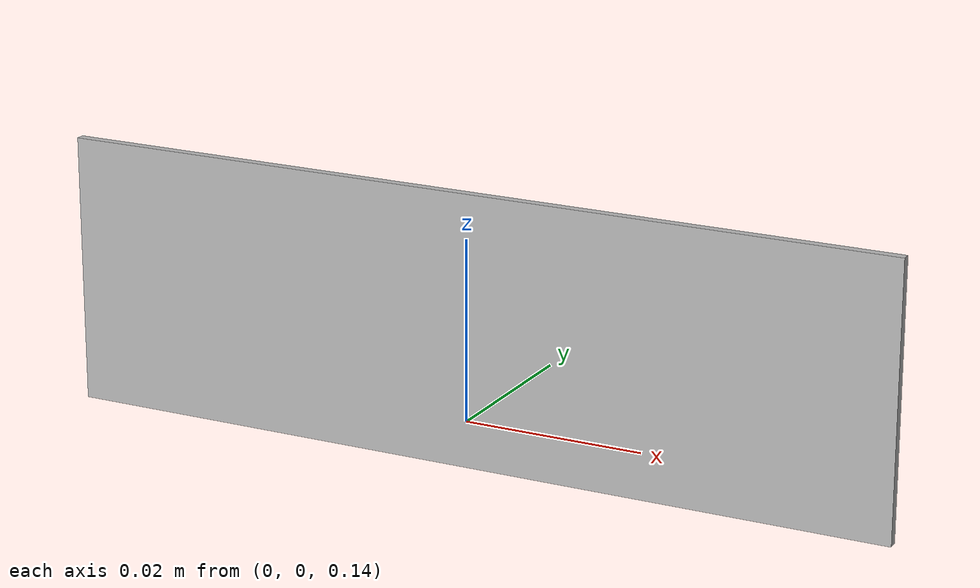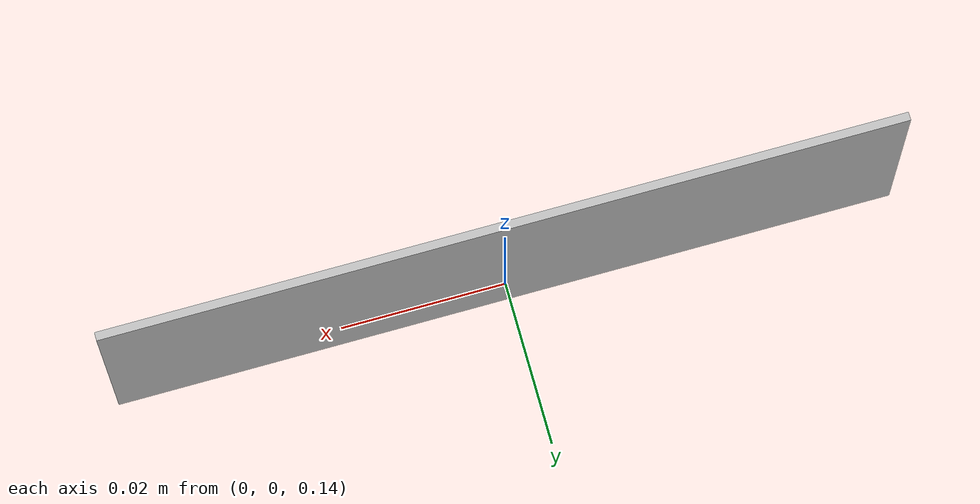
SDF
<?xml version="1.0"?>
<sdf version="1.6">
  <model name="car_plate2">
    <static>true</static>
    <pose>0 0 0.15 0 0 0</pose>

    <link name="car_plate2">
      <collision name="collision">
        <geometry>
          <box>
            <size>0.095 0.001 0.03</size>
          </box>
        </geometry>
      </collision>

      <visual name="visual">
        <geometry>
          <box>
            <size>0.095 0.001 0.03</size>
          </box>
        </geometry>

        <material>
          <script>
            <uri>model://car_plate2/materials/scripts</uri>
            <uri>model://car_plate2/materials/textures</uri>
            <name>car_plate2</name>
          </script>
        </material>
      </visual>
    </link>
  </model>
</sdf>
